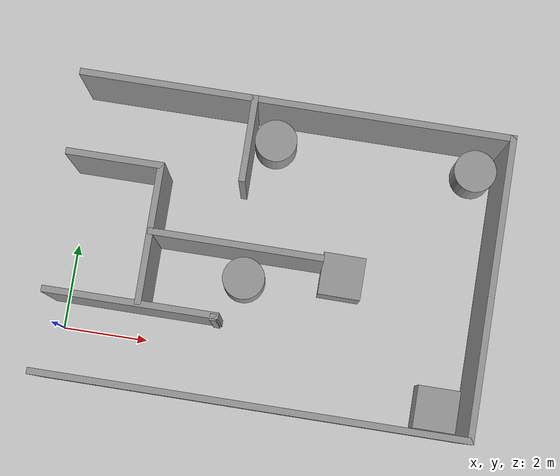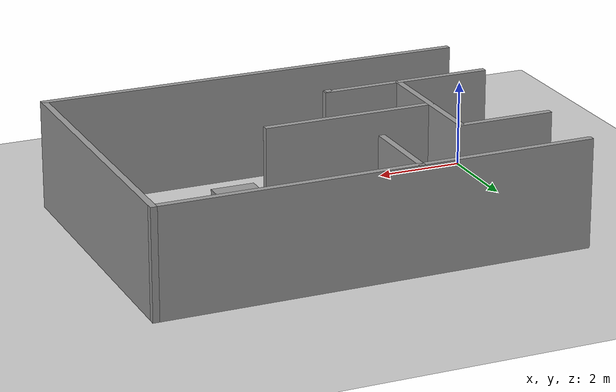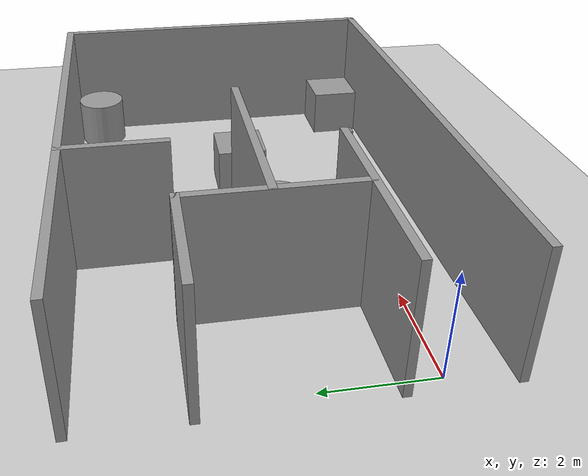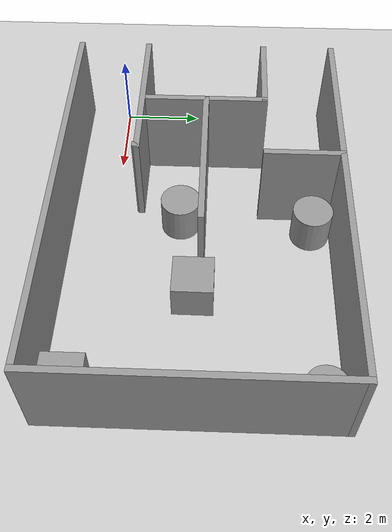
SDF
<sdf version="1.6">
 <world name="default">
  <light name="sun" type="directional">
   <pose>0 0 10 0 -0 0</pose>
   <diffuse>0.8 0.8 0.8 1</diffuse>
   <specular>0.2 0.2 0.2 1</specular>
   <attenuation>
    <range>1000</range>
    <constant>0.9</constant>
    <linear>0.01</linear>
    <quadratic>0.001</quadratic>
   </attenuation>
   <direction>-0.5 0.1 -0.9</direction>
  </light>
  <model name="ground_plane">
   <static>1</static>
   <link name="link">
    <collision name="collision">
     <geometry><plane><normal>0 0 1</normal><size>100 100</size></plane></geometry>
     <surface>
      <contact><collide_bitmask>65535</collide_bitmask></contact>
      <friction><ode><mu>100</mu><mu2>50</mu2></ode></friction>
     </surface>
    </collision>
    <visual name="visual">
     <cast_shadows>0</cast_shadows>
     <geometry><plane><normal>0 0 1</normal><size>100 100</size></plane></geometry>
     <material>
      <script><uri>file://media/materials/scripts/gazebo.material</uri><name>Gazebo/Grey</name></script>
     </material>
    </visual>
   </link>
  </model>
  <gravity>0 0 -9.8</gravity>
  <magnetic_field>6e-06 2.3e-05 -4.2e-05</magnetic_field>
  <atmosphere type="adiabatic"/>
  <physics name="default_physics" default="0" type="ode">
   <max_step_size>0.001</max_step_size>
   <real_time_factor>1</real_time_factor>
   <real_time_update_rate>1000</real_time_update_rate>
  </physics>
  <scene><ambient>0.4 0.4 0.4 1</ambient><background>0.7 0.7 0.7 1</background><shadows>1</shadows></scene>
  <audio><device>default</device></audio>
  <spherical_coordinates>
   <surface_model>EARTH_WGS84</surface_model>
   <latitude_deg>0</latitude_deg>
   <longitude_deg>0</longitude_deg>
   <elevation>0</elevation>
   <heading_deg>0</heading_deg>
  </spherical_coordinates>
  <model name="20230104">
   <pose>4.71966 2.25652 0 0 -0 0</pose>
   <link name="Wall_17">
    <collision name="Wall_17_Collision">
     <geometry><box><size>7 0.15 2.5</size></box></geometry>
     <pose>0 0 1.25 0 -0 0</pose>
    </collision>
    <visual name="Wall_17_Visual">
     <pose>0 0 1.25 0 -0 0</pose>
     <geometry><box><size>7 0.15 2.5</size></box></geometry>
     <material>
      <script><uri>file://media/materials/scripts/gazebo.material</uri><name>Gazebo/Grey</name></script>
      <ambient>1 1 1 1</ambient>
     </material>
     <meta><layer>0</layer></meta>
    </visual>
    <pose>4.925 0 0 0 -0 1.5708</pose>
   </link>
   <link name="Wall_22">
    <collision name="Wall_22_Collision">
     <geometry><box><size>10 0.15 2.5</size></box></geometry>
     <pose>0 0 1.25 0 -0 0</pose>
    </collision>
    <visual name="Wall_22_Visual">
     <pose>0 0 1.25 0 -0 0</pose>
     <geometry><box><size>10 0.15 2.5</size></box></geometry>
     <material>
      <script><uri>file://media/materials/scripts/gazebo.material</uri><name>Gazebo/Grey</name></script>
      <ambient>1 1 1 1</ambient>
     </material>
     <meta><layer>0</layer></meta>
    </visual>
    <pose>-0 3.425 0 0 -0 3.14159</pose>
   </link>
   <link name="Wall_57">
    <collision name="Wall_57_Collision">
     <geometry><box><size>0.15 0.15 2.5</size></box></geometry>
     <pose>0 0 1.25 0 -0 0</pose>
    </collision>
    <visual name="Wall_57_Visual">
     <pose>0 0 1.25 0 -0 0</pose>
     <geometry><box><size>0.15 0.15 2.5</size></box></geometry>
     <material>
      <script><uri>file://media/materials/scripts/gazebo.material</uri><name>Gazebo/Grey</name></script>
      <ambient>1 1 1 1</ambient>
     </material>
     <meta><layer>0</layer></meta>
    </visual>
    <pose>-1.11523 -1.61523 0 0 -0 0</pose>
   </link>
   <link name="Wall_58">
    <collision name="Wall_58_Collision">
     <geometry><box><size>0.15 0.15 2.5</size></box></geometry>
     <pose>0 0 1.25 0 -0 0</pose>
    </collision>
    <visual name="Wall_58_Visual">
     <pose>0 0 1.25 0 -0 0</pose>
     <geometry><box><size>0.15 0.15 2.5</size></box></geometry>
     <material>
      <script><uri>file://media/materials/scripts/gazebo.material</uri><name>Gazebo/Grey</name></script>
      <ambient>1 1 1 1</ambient>
     </material>
     <meta><layer>0</layer></meta>
    </visual>
    <pose>-1.11523 -1.61523 0 0 -0 0</pose>
   </link>
   <link name="Wall_66">
    <collision name="Wall_66_Collision">
     <geometry><box><size>2.25 0.15 2.5</size></box></geometry>
     <pose>0 0 1.25 0 -0 0</pose>
    </collision>
    <visual name="Wall_66_Visual">
     <pose>0 0 1.25 0 -0 0</pose>
     <geometry><box><size>2.25 0.15 2.5</size></box></geometry>
     <material>
      <script><uri>file://media/materials/scripts/gazebo.material</uri><name>Gazebo/Grey</name></script>
      <ambient>1 1 1 1</ambient>
     </material>
     <meta><layer>0</layer></meta>
    </visual>
    <pose>-3.875 1.575 0 0 -0 0</pose>
   </link>
   <link name="Wall_67">
    <collision name="Wall_67_Collision">
     <geometry><box><size>3.25 0.15 2.5</size></box></geometry>
     <pose>0 0 1.25 0 -0 0</pose>
    </collision>
    <visual name="Wall_67_Visual">
     <pose>0 0 1.25 0 -0 0</pose>
     <geometry><box><size>3.25 0.15 2.5</size></box></geometry>
     <material>
      <script><uri>file://media/materials/scripts/gazebo.material</uri><name>Gazebo/Grey</name></script>
      <ambient>1 1 1 1</ambient>
     </material>
     <meta><layer>0</layer></meta>
    </visual>
    <pose>-2.825 0.025 0 0 -0 -1.5708</pose>
   </link>
   <link name="Wall_71">
    <collision name="Wall_71_Collision">
     <geometry><box><size>2 0.15 2.5</size></box></geometry>
     <pose>0 0 1.25 0 -0 0</pose>
    </collision>
    <visual name="Wall_71_Visual">
     <pose>0 0 1.25 0 -0 0</pose>
     <geometry><box><size>2 0.15 2.5</size></box></geometry>
     <material>
      <script><uri>file://media/materials/scripts/gazebo.material</uri><name>Gazebo/Grey</name></script>
      <ambient>1 1 1 1</ambient>
     </material>
     <meta><layer>0</layer></meta>
    </visual>
    <pose>-0.975001 2.5 0 0 -0 1.5708</pose>
   </link>
   <link name="Wall_75">
    <collision name="Wall_75_Collision">
     <geometry><box><size>4 0.15 2.5</size></box></geometry>
     <pose>0 0 1.25 0 -0 0</pose>
    </collision>
    <visual name="Wall_75_Visual">
     <pose>0 0 1.25 0 -0 0</pose>
     <geometry><box><size>4 0.15 2.5</size></box></geometry>
     <material>
      <script><uri>file://media/materials/scripts/gazebo.material</uri><name>Gazebo/Grey</name></script>
      <ambient>1 1 1 1</ambient>
     </material>
     <meta><layer>0</layer></meta>
    </visual>
    <pose>-3 -1.575 0 0 -0 0</pose>
   </link>
   <link name="Wall_81">
    <collision name="Wall_81_Collision">
     <geometry><box><size>4 0.15 2.5</size></box></geometry>
     <pose>0 0 1.25 0 -0 0</pose>
    </collision>
    <visual name="Wall_81_Visual">
     <pose>0 0 1.25 0 -0 0</pose>
     <geometry><box><size>4 0.15 2.5</size></box></geometry>
     <material>
      <script><uri>file://media/materials/scripts/gazebo.material</uri><name>Gazebo/Grey</name></script>
      <ambient>1 1 1 1</ambient>
     </material>
     <meta><layer>0</layer></meta>
    </visual>
    <pose>-0.876113 0.070777 0 0 -0 0</pose>
   </link>
   <link name="Wall_9">
    <collision name="Wall_9_Collision">
     <geometry><box><size>10 0.15 2.5</size></box></geometry>
     <pose>0 0 1.25 0 -0 0</pose>
    </collision>
    <visual name="Wall_9_Visual">
     <pose>0 0 1.25 0 -0 0</pose>
     <geometry><box><size>10 0.15 2.5</size></box></geometry>
     <material>
      <script><uri>file://media/materials/scripts/gazebo.material</uri><name>Gazebo/Grey</name></script>
      <ambient>1 1 1 1</ambient>
     </material>
     <meta><layer>0</layer></meta>
    </visual>
    <pose>-0 -3.425 0 0 -0 0</pose>
   </link>
   <static>1</static>
  </model>
  <model name="unit_cylinder">
   <pose>9.06965 5.10651 0.5 0 0 -0.00766</pose>
   <link name="link">
    <inertial>
     <mass>1</mass>
     <inertia><ixx>0.145833</ixx><ixy>0</ixy><ixz>0</ixz><iyy>0.145833</iyy><iyz>0</iyz><izz>0.125</izz></inertia>
    </inertial>
    <collision name="collision">
     <geometry><cylinder><radius>0.5</radius><length>1</length></cylinder></geometry>
    </collision>
    <visual name="visual">
     <geometry><cylinder><radius>0.5</radius><length>1</length></cylinder></geometry>
     <material>
      <script><name>Gazebo/Grey</name><uri>file://media/materials/scripts/gazebo.material</uri></script>
     </material>
    </visual>
   </link>
  </model>
  <model name="unit_cylinder_0">
   <pose>4.07851 1.75229 0.499992 -3e-06 -4e-06 -0</pose>
   <link name="link">
    <inertial>
     <mass>1</mass>
     <inertia><ixx>0.145833</ixx><ixy>0</ixy><ixz>0</ixz><iyy>0.145833</iyy><iyz>0</iyz><izz>0.125</izz></inertia>
    </inertial>
    <collision name="collision">
     <geometry><cylinder><radius>0.5</radius><length>1</length></cylinder></geometry>
    </collision>
    <visual name="visual">
     <geometry><cylinder><radius>0.5</radius><length>1</length></cylinder></geometry>
     <material>
      <script><name>Gazebo/Grey</name><uri>file://media/materials/scripts/gazebo.material</uri></script>
     </material>
    </visual>
   </link>
  </model>
  <model name="unit_box">
   <pose>6.34292 2.16006 0.499995 -1e-05 0 -0.007055</pose>
   <link name="link">
    <inertial>
     <mass>1</mass>
     <inertia>
      <ixx>0.166667</ixx>
      <ixy>0</ixy>
      <ixz>0</ixz>
      <iyy>0.166667</iyy>
      <iyz>0</iyz>
      <izz>0.166667</izz>
     </inertia>
    </inertial>
    <collision name="collision"><geometry><box><size>1 1 1</size></box></geometry></collision>
    <visual name="visual">
     <geometry><box><size>1 1 1</size></box></geometry>
     <material>
      <script><name>Gazebo/Grey</name><uri>file://media/materials/scripts/gazebo.material</uri></script>
     </material>
    </visual>
   </link>
  </model>
  <model name="unit_box_0">
   <pose>8.9725 -0.560886 0.499995 -1e-05 -0 0</pose>
   <link name="link">
    <inertial>
     <mass>1</mass>
     <inertia>
      <ixx>0.166667</ixx>
      <ixy>0</ixy>
      <ixz>0</ixz>
      <iyy>0.166667</iyy>
      <iyz>0</iyz>
      <izz>0.166667</izz>
     </inertia>
    </inertial>
    <collision name="collision"><geometry><box><size>1 1 1</size></box></geometry></collision>
    <visual name="visual">
     <geometry><box><size>1 1 1</size></box></geometry>
     <material>
      <script><name>Gazebo/Grey</name><uri>file://media/materials/scripts/gazebo.material</uri></script>
     </material>
    </visual>
   </link>
  </model>
  <model name="unit_cylinder_1">
   <pose>4.31967 5.09304 0.499998 3e-06 4e-06 -0</pose>
   <link name="link">
    <inertial>
     <mass>1</mass>
     <inertia><ixx>0.145833</ixx><ixy>0</ixy><ixz>0</ixz><iyy>0.145833</iyy><iyz>0</iyz><izz>0.125</izz></inertia>
    </inertial>
    <collision name="collision">
     <geometry><cylinder><radius>0.5</radius><length>1</length></cylinder></geometry>
    </collision>
    <visual name="visual">
     <geometry><cylinder><radius>0.5</radius><length>1</length></cylinder></geometry>
     <material>
      <script><name>Gazebo/Grey</name><uri>file://media/materials/scripts/gazebo.material</uri></script>
     </material>
    </visual>
   </link>
  </model>
 </world>
</sdf>
